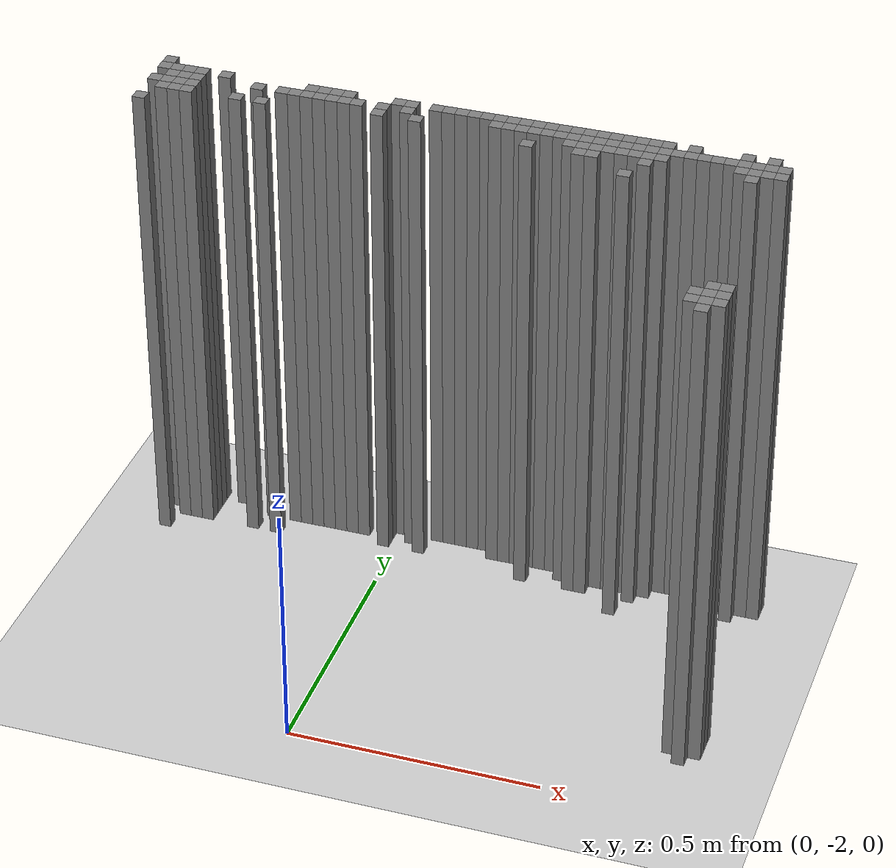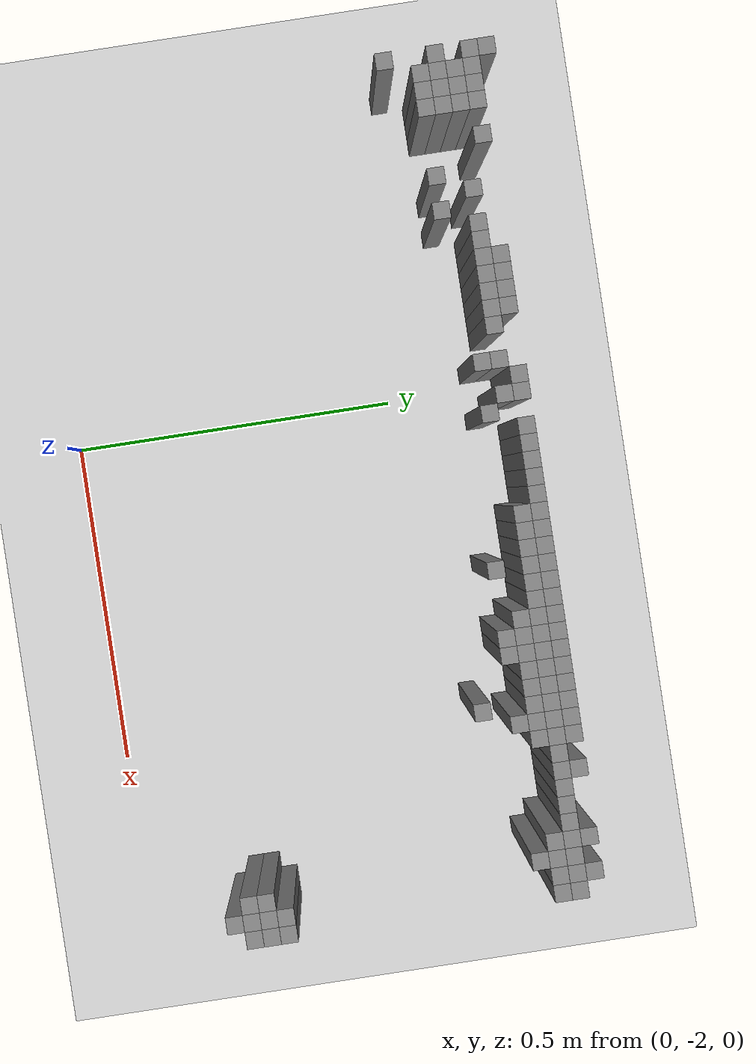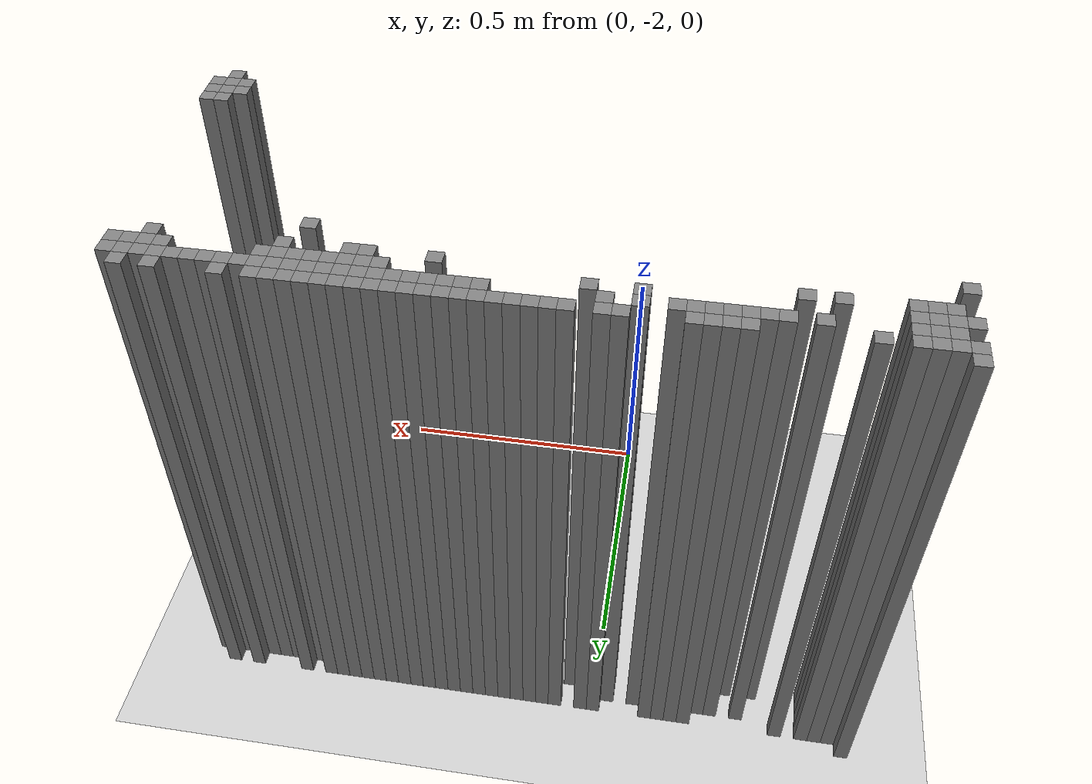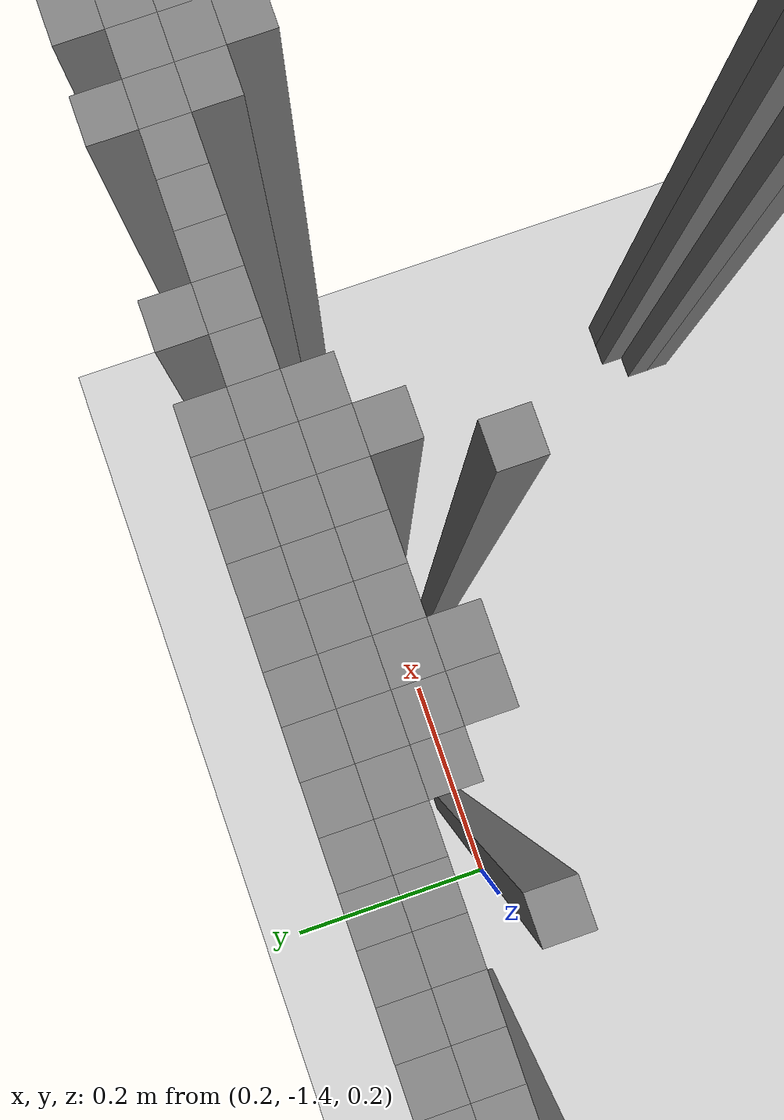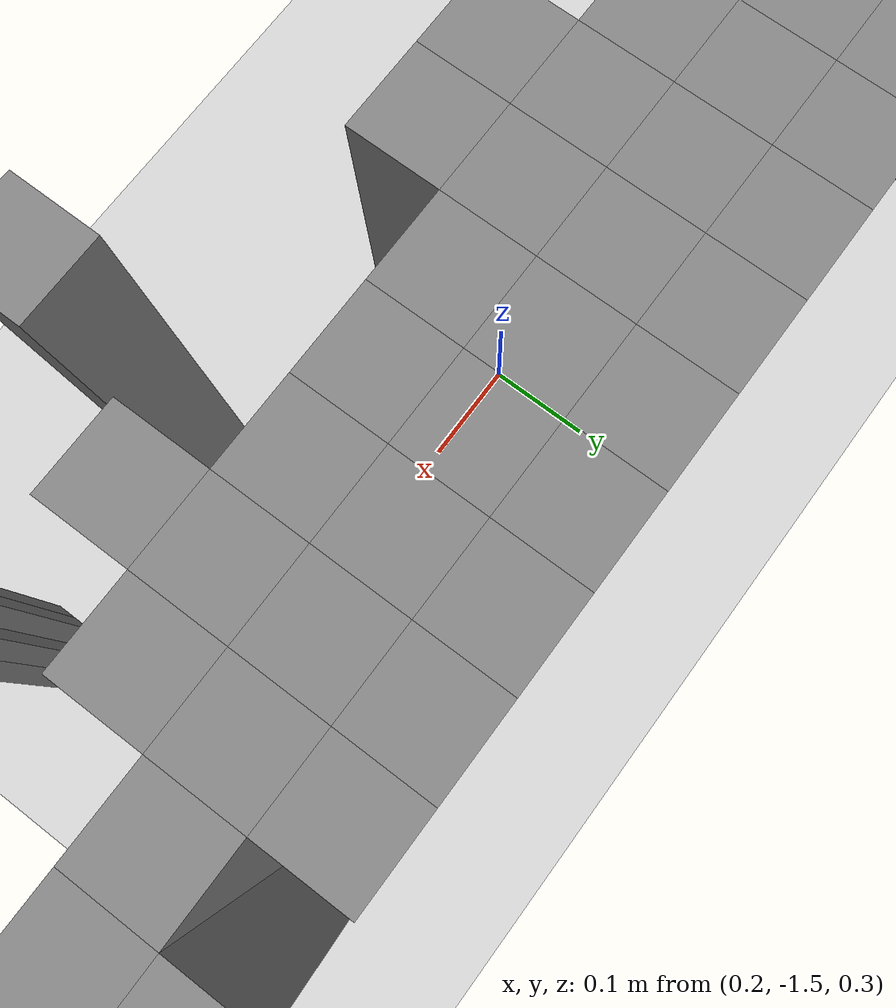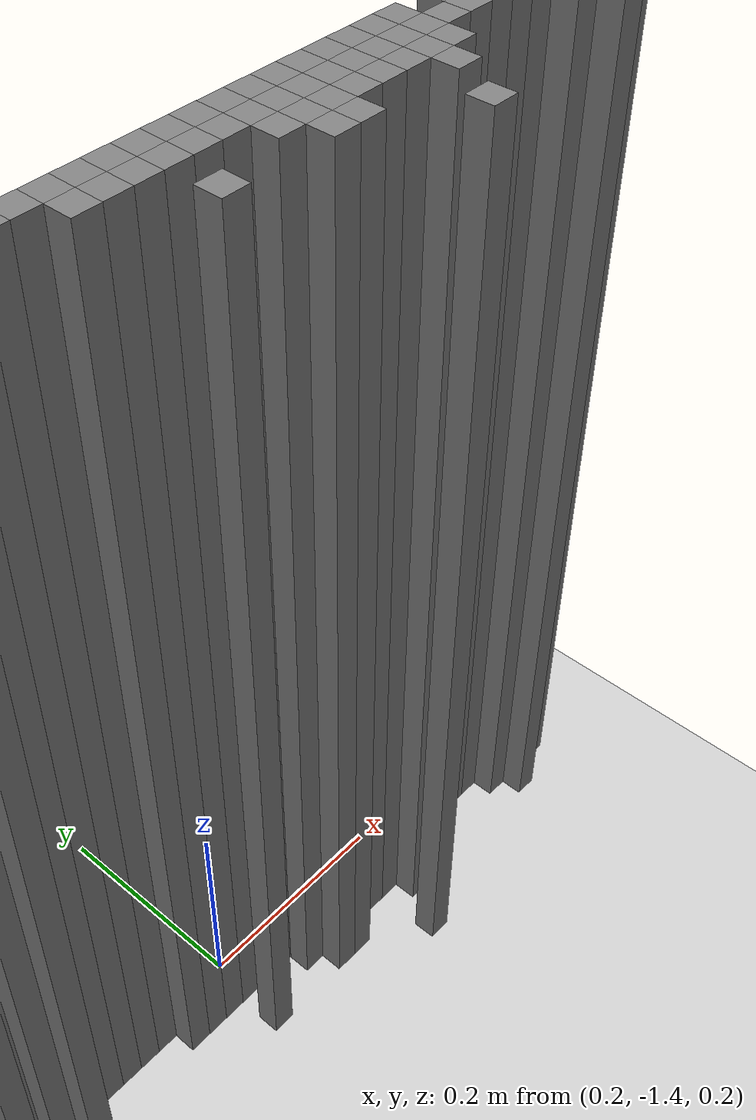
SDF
<sdf version="1.6">
 <world name="map_world">
  <include><uri>model://ground_plane</uri></include>
  <include><uri>model://sun</uri></include>
  <model name="obs_74_101">
   <static>true</static>
   <link name="link">
    <collision name="collision"><geometry><box><size>0.025 0.025 1.0</size></box></geometry></collision>
    <visual name="visual">
     <geometry><box><size>0.025 0.025 1.0</size></box></geometry>
     <material><ambient>0.5 0.5 0.5 1</ambient></material>
    </visual>
   </link>
   <pose>-0.47623499999999996 -1.2940709999999997 0.5 0 0 0</pose>
  </model>
  <model name="obs_74_102">
   <static>true</static>
   <link name="link">
    <collision name="collision"><geometry><box><size>0.025 0.025 1.0</size></box></geometry></collision>
    <visual name="visual">
     <geometry><box><size>0.025 0.025 1.0</size></box></geometry>
     <material><ambient>0.5 0.5 0.5 1</ambient></material>
    </visual>
   </link>
   <pose>-0.47623499999999996 -1.3190709999999999 0.5 0 0 0</pose>
  </model>
  <model name="obs_75_102">
   <static>true</static>
   <link name="link">
    <collision name="collision"><geometry><box><size>0.025 0.025 1.0</size></box></geometry></collision>
    <visual name="visual">
     <geometry><box><size>0.025 0.025 1.0</size></box></geometry>
     <material><ambient>0.5 0.5 0.5 1</ambient></material>
    </visual>
   </link>
   <pose>-0.45123500000000005 -1.3190709999999999 0.5 0 0 0</pose>
  </model>
  <model name="obs_76_102">
   <static>true</static>
   <link name="link">
    <collision name="collision"><geometry><box><size>0.025 0.025 1.0</size></box></geometry></collision>
    <visual name="visual">
     <geometry><box><size>0.025 0.025 1.0</size></box></geometry>
     <material><ambient>0.5 0.5 0.5 1</ambient></material>
    </visual>
   </link>
   <pose>-0.4262349999999999 -1.3190709999999999 0.5 0 0 0</pose>
  </model>
  <model name="obs_77_102">
   <static>true</static>
   <link name="link">
    <collision name="collision"><geometry><box><size>0.025 0.025 1.0</size></box></geometry></collision>
    <visual name="visual">
     <geometry><box><size>0.025 0.025 1.0</size></box></geometry>
     <material><ambient>0.5 0.5 0.5 1</ambient></material>
    </visual>
   </link>
   <pose>-0.401235 -1.3190709999999999 0.5 0 0 0</pose>
  </model>
  <model name="obs_79_102">
   <static>true</static>
   <link name="link">
    <collision name="collision"><geometry><box><size>0.025 0.025 1.0</size></box></geometry></collision>
    <visual name="visual">
     <geometry><box><size>0.025 0.025 1.0</size></box></geometry>
     <material><ambient>0.5 0.5 0.5 1</ambient></material>
    </visual>
   </link>
   <pose>-0.35123499999999996 -1.3190709999999999 0.5 0 0 0</pose>
  </model>
  <model name="obs_86_102">
   <static>true</static>
   <link name="link">
    <collision name="collision"><geometry><box><size>0.025 0.025 1.0</size></box></geometry></collision>
    <visual name="visual">
     <geometry><box><size>0.025 0.025 1.0</size></box></geometry>
     <material><ambient>0.5 0.5 0.5 1</ambient></material>
    </visual>
   </link>
   <pose>-0.17623500000000014 -1.3190709999999999 0.5 0 0 0</pose>
  </model>
  <model name="obs_87_102">
   <static>true</static>
   <link name="link">
    <collision name="collision"><geometry><box><size>0.025 0.025 1.0</size></box></geometry></collision>
    <visual name="visual">
     <geometry><box><size>0.025 0.025 1.0</size></box></geometry>
     <material><ambient>0.5 0.5 0.5 1</ambient></material>
    </visual>
   </link>
   <pose>-0.1512349999999998 -1.3190709999999999 0.5 0 0 0</pose>
  </model>
  <model name="obs_88_102">
   <static>true</static>
   <link name="link">
    <collision name="collision"><geometry><box><size>0.025 0.025 1.0</size></box></geometry></collision>
    <visual name="visual">
     <geometry><box><size>0.025 0.025 1.0</size></box></geometry>
     <material><ambient>0.5 0.5 0.5 1</ambient></material>
    </visual>
   </link>
   <pose>-0.12623499999999988 -1.3190709999999999 0.5 0 0 0</pose>
  </model>
  <model name="obs_89_102">
   <static>true</static>
   <link name="link">
    <collision name="collision"><geometry><box><size>0.025 0.025 1.0</size></box></geometry></collision>
    <visual name="visual">
     <geometry><box><size>0.025 0.025 1.0</size></box></geometry>
     <material><ambient>0.5 0.5 0.5 1</ambient></material>
    </visual>
   </link>
   <pose>-0.10123499999999996 -1.3190709999999999 0.5 0 0 0</pose>
  </model>
  <model name="obs_93_102">
   <static>true</static>
   <link name="link">
    <collision name="collision"><geometry><box><size>0.025 0.025 1.0</size></box></geometry></collision>
    <visual name="visual">
     <geometry><box><size>0.025 0.025 1.0</size></box></geometry>
     <material><ambient>0.5 0.5 0.5 1</ambient></material>
    </visual>
   </link>
   <pose>-0.001234999999999875 -1.3190709999999999 0.5 0 0 0</pose>
  </model>
  <model name="obs_94_102">
   <static>true</static>
   <link name="link">
    <collision name="collision"><geometry><box><size>0.025 0.025 1.0</size></box></geometry></collision>
    <visual name="visual">
     <geometry><box><size>0.025 0.025 1.0</size></box></geometry>
     <material><ambient>0.5 0.5 0.5 1</ambient></material>
    </visual>
   </link>
   <pose>0.023765000000000036 -1.3190709999999999 0.5 0 0 0</pose>
  </model>
  <model name="obs_96_102">
   <static>true</static>
   <link name="link">
    <collision name="collision"><geometry><box><size>0.025 0.025 1.0</size></box></geometry></collision>
    <visual name="visual">
     <geometry><box><size>0.025 0.025 1.0</size></box></geometry>
     <material><ambient>0.5 0.5 0.5 1</ambient></material>
    </visual>
   </link>
   <pose>0.0737650000000003 -1.3190709999999999 0.5 0 0 0</pose>
  </model>
  <model name="obs_97_102">
   <static>true</static>
   <link name="link">
    <collision name="collision"><geometry><box><size>0.025 0.025 1.0</size></box></geometry></collision>
    <visual name="visual">
     <geometry><box><size>0.025 0.025 1.0</size></box></geometry>
     <material><ambient>0.5 0.5 0.5 1</ambient></material>
    </visual>
   </link>
   <pose>0.09876500000000021 -1.3190709999999999 0.5 0 0 0</pose>
  </model>
  <model name="obs_98_102">
   <static>true</static>
   <link name="link">
    <collision name="collision"><geometry><box><size>0.025 0.025 1.0</size></box></geometry></collision>
    <visual name="visual">
     <geometry><box><size>0.025 0.025 1.0</size></box></geometry>
     <material><ambient>0.5 0.5 0.5 1</ambient></material>
    </visual>
   </link>
   <pose>0.12376500000000012 -1.3190709999999999 0.5 0 0 0</pose>
  </model>
  <model name="obs_99_102">
   <static>true</static>
   <link name="link">
    <collision name="collision"><geometry><box><size>0.025 0.025 1.0</size></box></geometry></collision>
    <visual name="visual">
     <geometry><box><size>0.025 0.025 1.0</size></box></geometry>
     <material><ambient>0.5 0.5 0.5 1</ambient></material>
    </visual>
   </link>
   <pose>0.14876500000000004 -1.3190709999999999 0.5 0 0 0</pose>
  </model>
  <model name="obs_100_102">
   <static>true</static>
   <link name="link">
    <collision name="collision"><geometry><box><size>0.025 0.025 1.0</size></box></geometry></collision>
    <visual name="visual">
     <geometry><box><size>0.025 0.025 1.0</size></box></geometry>
     <material><ambient>0.5 0.5 0.5 1</ambient></material>
    </visual>
   </link>
   <pose>0.17376499999999995 -1.3190709999999999 0.5 0 0 0</pose>
  </model>
  <model name="obs_101_102">
   <static>true</static>
   <link name="link">
    <collision name="collision"><geometry><box><size>0.025 0.025 1.0</size></box></geometry></collision>
    <visual name="visual">
     <geometry><box><size>0.025 0.025 1.0</size></box></geometry>
     <material><ambient>0.5 0.5 0.5 1</ambient></material>
    </visual>
   </link>
   <pose>0.1987650000000003 -1.3190709999999999 0.5 0 0 0</pose>
  </model>
  <model name="obs_102_102">
   <static>true</static>
   <link name="link">
    <collision name="collision"><geometry><box><size>0.025 0.025 1.0</size></box></geometry></collision>
    <visual name="visual">
     <geometry><box><size>0.025 0.025 1.0</size></box></geometry>
     <material><ambient>0.5 0.5 0.5 1</ambient></material>
    </visual>
   </link>
   <pose>0.2237650000000002 -1.3190709999999999 0.5 0 0 0</pose>
  </model>
  <model name="obs_103_102">
   <static>true</static>
   <link name="link">
    <collision name="collision"><geometry><box><size>0.025 0.025 1.0</size></box></geometry></collision>
    <visual name="visual">
     <geometry><box><size>0.025 0.025 1.0</size></box></geometry>
     <material><ambient>0.5 0.5 0.5 1</ambient></material>
    </visual>
   </link>
   <pose>0.24876500000000012 -1.3190709999999999 0.5 0 0 0</pose>
  </model>
  <model name="obs_104_102">
   <static>true</static>
   <link name="link">
    <collision name="collision"><geometry><box><size>0.025 0.025 1.0</size></box></geometry></collision>
    <visual name="visual">
     <geometry><box><size>0.025 0.025 1.0</size></box></geometry>
     <material><ambient>0.5 0.5 0.5 1</ambient></material>
    </visual>
   </link>
   <pose>0.27376500000000004 -1.3190709999999999 0.5 0 0 0</pose>
  </model>
  <model name="obs_105_102">
   <static>true</static>
   <link name="link">
    <collision name="collision"><geometry><box><size>0.025 0.025 1.0</size></box></geometry></collision>
    <visual name="visual">
     <geometry><box><size>0.025 0.025 1.0</size></box></geometry>
     <material><ambient>0.5 0.5 0.5 1</ambient></material>
    </visual>
   </link>
   <pose>0.29876499999999995 -1.3190709999999999 0.5 0 0 0</pose>
  </model>
  <model name="obs_106_102">
   <static>true</static>
   <link name="link">
    <collision name="collision"><geometry><box><size>0.025 0.025 1.0</size></box></geometry></collision>
    <visual name="visual">
     <geometry><box><size>0.025 0.025 1.0</size></box></geometry>
     <material><ambient>0.5 0.5 0.5 1</ambient></material>
    </visual>
   </link>
   <pose>0.3237650000000003 -1.3190709999999999 0.5 0 0 0</pose>
  </model>
  <model name="obs_107_102">
   <static>true</static>
   <link name="link">
    <collision name="collision"><geometry><box><size>0.025 0.025 1.0</size></box></geometry></collision>
    <visual name="visual">
     <geometry><box><size>0.025 0.025 1.0</size></box></geometry>
     <material><ambient>0.5 0.5 0.5 1</ambient></material>
    </visual>
   </link>
   <pose>0.3487650000000002 -1.3190709999999999 0.5 0 0 0</pose>
  </model>
  <model name="obs_108_102">
   <static>true</static>
   <link name="link">
    <collision name="collision"><geometry><box><size>0.025 0.025 1.0</size></box></geometry></collision>
    <visual name="visual">
     <geometry><box><size>0.025 0.025 1.0</size></box></geometry>
     <material><ambient>0.5 0.5 0.5 1</ambient></material>
    </visual>
   </link>
   <pose>0.3737650000000001 -1.3190709999999999 0.5 0 0 0</pose>
  </model>
  <model name="obs_109_102">
   <static>true</static>
   <link name="link">
    <collision name="collision"><geometry><box><size>0.025 0.025 1.0</size></box></geometry></collision>
    <visual name="visual">
     <geometry><box><size>0.025 0.025 1.0</size></box></geometry>
     <material><ambient>0.5 0.5 0.5 1</ambient></material>
    </visual>
   </link>
   <pose>0.39876500000000004 -1.3190709999999999 0.5 0 0 0</pose>
  </model>
  <model name="obs_110_102">
   <static>true</static>
   <link name="link">
    <collision name="collision"><geometry><box><size>0.025 0.025 1.0</size></box></geometry></collision>
    <visual name="visual">
     <geometry><box><size>0.025 0.025 1.0</size></box></geometry>
     <material><ambient>0.5 0.5 0.5 1</ambient></material>
    </visual>
   </link>
   <pose>0.42376499999999995 -1.3190709999999999 0.5 0 0 0</pose>
  </model>
  <model name="obs_111_102">
   <static>true</static>
   <link name="link">
    <collision name="collision"><geometry><box><size>0.025 0.025 1.0</size></box></geometry></collision>
    <visual name="visual">
     <geometry><box><size>0.025 0.025 1.0</size></box></geometry>
     <material><ambient>0.5 0.5 0.5 1</ambient></material>
    </visual>
   </link>
   <pose>0.4487650000000003 -1.3190709999999999 0.5 0 0 0</pose>
  </model>
  <model name="obs_112_102">
   <static>true</static>
   <link name="link">
    <collision name="collision"><geometry><box><size>0.025 0.025 1.0</size></box></geometry></collision>
    <visual name="visual">
     <geometry><box><size>0.025 0.025 1.0</size></box></geometry>
     <material><ambient>0.5 0.5 0.5 1</ambient></material>
    </visual>
   </link>
   <pose>0.4737650000000002 -1.3190709999999999 0.5 0 0 0</pose>
  </model>
  <model name="obs_113_102">
   <static>true</static>
   <link name="link">
    <collision name="collision"><geometry><box><size>0.025 0.025 1.0</size></box></geometry></collision>
    <visual name="visual">
     <geometry><box><size>0.025 0.025 1.0</size></box></geometry>
     <material><ambient>0.5 0.5 0.5 1</ambient></material>
    </visual>
   </link>
   <pose>0.4987650000000001 -1.3190709999999999 0.5 0 0 0</pose>
  </model>
  <model name="obs_114_102">
   <static>true</static>
   <link name="link">
    <collision name="collision"><geometry><box><size>0.025 0.025 1.0</size></box></geometry></collision>
    <visual name="visual">
     <geometry><box><size>0.025 0.025 1.0</size></box></geometry>
     <material><ambient>0.5 0.5 0.5 1</ambient></material>
    </visual>
   </link>
   <pose>0.523765 -1.3190709999999999 0.5 0 0 0</pose>
  </model>
  <model name="obs_116_102">
   <static>true</static>
   <link name="link">
    <collision name="collision"><geometry><box><size>0.025 0.025 1.0</size></box></geometry></collision>
    <visual name="visual">
     <geometry><box><size>0.025 0.025 1.0</size></box></geometry>
     <material><ambient>0.5 0.5 0.5 1</ambient></material>
    </visual>
   </link>
   <pose>0.5737650000000003 -1.3190709999999999 0.5 0 0 0</pose>
  </model>
  <model name="obs_120_102">
   <static>true</static>
   <link name="link">
    <collision name="collision"><geometry><box><size>0.025 0.025 1.0</size></box></geometry></collision>
    <visual name="visual">
     <geometry><box><size>0.025 0.025 1.0</size></box></geometry>
     <material><ambient>0.5 0.5 0.5 1</ambient></material>
    </visual>
   </link>
   <pose>0.673765 -1.3190709999999999 0.5 0 0 0</pose>
  </model>
  <model name="obs_122_102">
   <static>true</static>
   <link name="link">
    <collision name="collision"><geometry><box><size>0.025 0.025 1.0</size></box></geometry></collision>
    <visual name="visual">
     <geometry><box><size>0.025 0.025 1.0</size></box></geometry>
     <material><ambient>0.5 0.5 0.5 1</ambient></material>
    </visual>
   </link>
   <pose>0.7237650000000002 -1.3190709999999999 0.5 0 0 0</pose>
  </model>
  <model name="obs_75_103">
   <static>true</static>
   <link name="link">
    <collision name="collision"><geometry><box><size>0.025 0.025 1.0</size></box></geometry></collision>
    <visual name="visual">
     <geometry><box><size>0.025 0.025 1.0</size></box></geometry>
     <material><ambient>0.5 0.5 0.5 1</ambient></material>
    </visual>
   </link>
   <pose>-0.45123500000000005 -1.344071 0.5 0 0 0</pose>
  </model>
  <model name="obs_76_103">
   <static>true</static>
   <link name="link">
    <collision name="collision"><geometry><box><size>0.025 0.025 1.0</size></box></geometry></collision>
    <visual name="visual">
     <geometry><box><size>0.025 0.025 1.0</size></box></geometry>
     <material><ambient>0.5 0.5 0.5 1</ambient></material>
    </visual>
   </link>
   <pose>-0.4262349999999999 -1.344071 0.5 0 0 0</pose>
  </model>
  <model name="obs_77_103">
   <static>true</static>
   <link name="link">
    <collision name="collision"><geometry><box><size>0.025 0.025 1.0</size></box></geometry></collision>
    <visual name="visual">
     <geometry><box><size>0.025 0.025 1.0</size></box></geometry>
     <material><ambient>0.5 0.5 0.5 1</ambient></material>
    </visual>
   </link>
   <pose>-0.401235 -1.344071 0.5 0 0 0</pose>
  </model>
  <model name="obs_82_103">
   <static>true</static>
   <link name="link">
    <collision name="collision"><geometry><box><size>0.025 0.025 1.0</size></box></geometry></collision>
    <visual name="visual">
     <geometry><box><size>0.025 0.025 1.0</size></box></geometry>
     <material><ambient>0.5 0.5 0.5 1</ambient></material>
    </visual>
   </link>
   <pose>-0.2762349999999998 -1.344071 0.5 0 0 0</pose>
  </model>
  <model name="obs_84_103">
   <static>true</static>
   <link name="link">
    <collision name="collision"><geometry><box><size>0.025 0.025 1.0</size></box></geometry></collision>
    <visual name="visual">
     <geometry><box><size>0.025 0.025 1.0</size></box></geometry>
     <material><ambient>0.5 0.5 0.5 1</ambient></material>
    </visual>
   </link>
   <pose>-0.22623499999999996 -1.344071 0.5 0 0 0</pose>
  </model>
  <model name="obs_85_103">
   <static>true</static>
   <link name="link">
    <collision name="collision"><geometry><box><size>0.025 0.025 1.0</size></box></geometry></collision>
    <visual name="visual">
     <geometry><box><size>0.025 0.025 1.0</size></box></geometry>
     <material><ambient>0.5 0.5 0.5 1</ambient></material>
    </visual>
   </link>
   <pose>-0.20123500000000005 -1.344071 0.5 0 0 0</pose>
  </model>
  <model name="obs_86_103">
   <static>true</static>
   <link name="link">
    <collision name="collision"><geometry><box><size>0.025 0.025 1.0</size></box></geometry></collision>
    <visual name="visual">
     <geometry><box><size>0.025 0.025 1.0</size></box></geometry>
     <material><ambient>0.5 0.5 0.5 1</ambient></material>
    </visual>
   </link>
   <pose>-0.17623500000000014 -1.344071 0.5 0 0 0</pose>
  </model>
  <model name="obs_87_103">
   <static>true</static>
   <link name="link">
    <collision name="collision"><geometry><box><size>0.025 0.025 1.0</size></box></geometry></collision>
    <visual name="visual">
     <geometry><box><size>0.025 0.025 1.0</size></box></geometry>
     <material><ambient>0.5 0.5 0.5 1</ambient></material>
    </visual>
   </link>
   <pose>-0.1512349999999998 -1.344071 0.5 0 0 0</pose>
  </model>
  <model name="obs_88_103">
   <static>true</static>
   <link name="link">
    <collision name="collision"><geometry><box><size>0.025 0.025 1.0</size></box></geometry></collision>
    <visual name="visual">
     <geometry><box><size>0.025 0.025 1.0</size></box></geometry>
     <material><ambient>0.5 0.5 0.5 1</ambient></material>
    </visual>
   </link>
   <pose>-0.12623499999999988 -1.344071 0.5 0 0 0</pose>
  </model>
  <model name="obs_89_103">
   <static>true</static>
   <link name="link">
    <collision name="collision"><geometry><box><size>0.025 0.025 1.0</size></box></geometry></collision>
    <visual name="visual">
     <geometry><box><size>0.025 0.025 1.0</size></box></geometry>
     <material><ambient>0.5 0.5 0.5 1</ambient></material>
    </visual>
   </link>
   <pose>-0.10123499999999996 -1.344071 0.5 0 0 0</pose>
  </model>
  <model name="obs_90_103">
   <static>true</static>
   <link name="link">
    <collision name="collision"><geometry><box><size>0.025 0.025 1.0</size></box></geometry></collision>
    <visual name="visual">
     <geometry><box><size>0.025 0.025 1.0</size></box></geometry>
     <material><ambient>0.5 0.5 0.5 1</ambient></material>
    </visual>
   </link>
   <pose>-0.07623500000000005 -1.344071 0.5 0 0 0</pose>
  </model>
  <model name="obs_92_103">
   <static>true</static>
   <link name="link">
    <collision name="collision"><geometry><box><size>0.025 0.025 1.0</size></box></geometry></collision>
    <visual name="visual">
     <geometry><box><size>0.025 0.025 1.0</size></box></geometry>
     <material><ambient>0.5 0.5 0.5 1</ambient></material>
    </visual>
   </link>
   <pose>-0.026234999999999786 -1.344071 0.5 0 0 0</pose>
  </model>
  <model name="obs_94_103">
   <static>true</static>
   <link name="link">
    <collision name="collision"><geometry><box><size>0.025 0.025 1.0</size></box></geometry></collision>
    <visual name="visual">
     <geometry><box><size>0.025 0.025 1.0</size></box></geometry>
     <material><ambient>0.5 0.5 0.5 1</ambient></material>
    </visual>
   </link>
   <pose>0.023765000000000036 -1.344071 0.5 0 0 0</pose>
  </model>
  <model name="obs_101_103">
   <static>true</static>
   <link name="link">
    <collision name="collision"><geometry><box><size>0.025 0.025 1.0</size></box></geometry></collision>
    <visual name="visual">
     <geometry><box><size>0.025 0.025 1.0</size></box></geometry>
     <material><ambient>0.5 0.5 0.5 1</ambient></material>
    </visual>
   </link>
   <pose>0.1987650000000003 -1.344071 0.5 0 0 0</pose>
  </model>
  <model name="obs_102_103">
   <static>true</static>
   <link name="link">
    <collision name="collision"><geometry><box><size>0.025 0.025 1.0</size></box></geometry></collision>
    <visual name="visual">
     <geometry><box><size>0.025 0.025 1.0</size></box></geometry>
     <material><ambient>0.5 0.5 0.5 1</ambient></material>
    </visual>
   </link>
   <pose>0.2237650000000002 -1.344071 0.5 0 0 0</pose>
  </model>
  <model name="obs_103_103">
   <static>true</static>
   <link name="link">
    <collision name="collision"><geometry><box><size>0.025 0.025 1.0</size></box></geometry></collision>
    <visual name="visual">
     <geometry><box><size>0.025 0.025 1.0</size></box></geometry>
     <material><ambient>0.5 0.5 0.5 1</ambient></material>
    </visual>
   </link>
   <pose>0.24876500000000012 -1.344071 0.5 0 0 0</pose>
  </model>
  <model name="obs_104_103">
   <static>true</static>
   <link name="link">
    <collision name="collision"><geometry><box><size>0.025 0.025 1.0</size></box></geometry></collision>
    <visual name="visual">
     <geometry><box><size>0.025 0.025 1.0</size></box></geometry>
     <material><ambient>0.5 0.5 0.5 1</ambient></material>
    </visual>
   </link>
   <pose>0.27376500000000004 -1.344071 0.5 0 0 0</pose>
  </model>
  <model name="obs_105_103">
   <static>true</static>
   <link name="link">
    <collision name="collision"><geometry><box><size>0.025 0.025 1.0</size></box></geometry></collision>
    <visual name="visual">
     <geometry><box><size>0.025 0.025 1.0</size></box></geometry>
     <material><ambient>0.5 0.5 0.5 1</ambient></material>
    </visual>
   </link>
   <pose>0.29876499999999995 -1.344071 0.5 0 0 0</pose>
  </model>
  <model name="obs_106_103">
   <static>true</static>
   <link name="link">
    <collision name="collision"><geometry><box><size>0.025 0.025 1.0</size></box></geometry></collision>
    <visual name="visual">
     <geometry><box><size>0.025 0.025 1.0</size></box></geometry>
     <material><ambient>0.5 0.5 0.5 1</ambient></material>
    </visual>
   </link>
   <pose>0.3237650000000003 -1.344071 0.5 0 0 0</pose>
  </model>
  <model name="obs_107_103">
   <static>true</static>
   <link name="link">
    <collision name="collision"><geometry><box><size>0.025 0.025 1.0</size></box></geometry></collision>
    <visual name="visual">
     <geometry><box><size>0.025 0.025 1.0</size></box></geometry>
     <material><ambient>0.5 0.5 0.5 1</ambient></material>
    </visual>
   </link>
   <pose>0.3487650000000002 -1.344071 0.5 0 0 0</pose>
  </model>
  <model name="obs_108_103">
   <static>true</static>
   <link name="link">
    <collision name="collision"><geometry><box><size>0.025 0.025 1.0</size></box></geometry></collision>
    <visual name="visual">
     <geometry><box><size>0.025 0.025 1.0</size></box></geometry>
     <material><ambient>0.5 0.5 0.5 1</ambient></material>
    </visual>
   </link>
   <pose>0.3737650000000001 -1.344071 0.5 0 0 0</pose>
  </model>
  <model name="obs_109_103">
   <static>true</static>
   <link name="link">
    <collision name="collision"><geometry><box><size>0.025 0.025 1.0</size></box></geometry></collision>
    <visual name="visual">
     <geometry><box><size>0.025 0.025 1.0</size></box></geometry>
     <material><ambient>0.5 0.5 0.5 1</ambient></material>
    </visual>
   </link>
   <pose>0.39876500000000004 -1.344071 0.5 0 0 0</pose>
  </model>
  <model name="obs_110_103">
   <static>true</static>
   <link name="link">
    <collision name="collision"><geometry><box><size>0.025 0.025 1.0</size></box></geometry></collision>
    <visual name="visual">
     <geometry><box><size>0.025 0.025 1.0</size></box></geometry>
     <material><ambient>0.5 0.5 0.5 1</ambient></material>
    </visual>
   </link>
   <pose>0.42376499999999995 -1.344071 0.5 0 0 0</pose>
  </model>
  <model name="obs_111_103">
   <static>true</static>
   <link name="link">
    <collision name="collision"><geometry><box><size>0.025 0.025 1.0</size></box></geometry></collision>
    <visual name="visual">
     <geometry><box><size>0.025 0.025 1.0</size></box></geometry>
     <material><ambient>0.5 0.5 0.5 1</ambient></material>
    </visual>
   </link>
   <pose>0.4487650000000003 -1.344071 0.5 0 0 0</pose>
  </model>
  <model name="obs_112_103">
   <static>true</static>
   <link name="link">
    <collision name="collision"><geometry><box><size>0.025 0.025 1.0</size></box></geometry></collision>
    <visual name="visual">
     <geometry><box><size>0.025 0.025 1.0</size></box></geometry>
     <material><ambient>0.5 0.5 0.5 1</ambient></material>
    </visual>
   </link>
   <pose>0.4737650000000002 -1.344071 0.5 0 0 0</pose>
  </model>
  <model name="obs_113_103">
   <static>true</static>
   <link name="link">
    <collision name="collision"><geometry><box><size>0.025 0.025 1.0</size></box></geometry></collision>
    <visual name="visual">
     <geometry><box><size>0.025 0.025 1.0</size></box></geometry>
     <material><ambient>0.5 0.5 0.5 1</ambient></material>
    </visual>
   </link>
   <pose>0.4987650000000001 -1.344071 0.5 0 0 0</pose>
  </model>
  <model name="obs_114_103">
   <static>true</static>
   <link name="link">
    <collision name="collision"><geometry><box><size>0.025 0.025 1.0</size></box></geometry></collision>
    <visual name="visual">
     <geometry><box><size>0.025 0.025 1.0</size></box></geometry>
     <material><ambient>0.5 0.5 0.5 1</ambient></material>
    </visual>
   </link>
   <pose>0.523765 -1.344071 0.5 0 0 0</pose>
  </model>
  <model name="obs_115_103">
   <static>true</static>
   <link name="link">
    <collision name="collision"><geometry><box><size>0.025 0.025 1.0</size></box></geometry></collision>
    <visual name="visual">
     <geometry><box><size>0.025 0.025 1.0</size></box></geometry>
     <material><ambient>0.5 0.5 0.5 1</ambient></material>
    </visual>
   </link>
   <pose>0.548765 -1.344071 0.5 0 0 0</pose>
  </model>
  <model name="obs_116_103">
   <static>true</static>
   <link name="link">
    <collision name="collision"><geometry><box><size>0.025 0.025 1.0</size></box></geometry></collision>
    <visual name="visual">
     <geometry><box><size>0.025 0.025 1.0</size></box></geometry>
     <material><ambient>0.5 0.5 0.5 1</ambient></material>
    </visual>
   </link>
   <pose>0.5737650000000003 -1.344071 0.5 0 0 0</pose>
  </model>
  <model name="obs_117_103">
   <static>true</static>
   <link name="link">
    <collision name="collision"><geometry><box><size>0.025 0.025 1.0</size></box></geometry></collision>
    <visual name="visual">
     <geometry><box><size>0.025 0.025 1.0</size></box></geometry>
     <material><ambient>0.5 0.5 0.5 1</ambient></material>
    </visual>
   </link>
   <pose>0.5987650000000002 -1.344071 0.5 0 0 0</pose>
  </model>
  <model name="obs_118_103">
   <static>true</static>
   <link name="link">
    <collision name="collision"><geometry><box><size>0.025 0.025 1.0</size></box></geometry></collision>
    <visual name="visual">
     <geometry><box><size>0.025 0.025 1.0</size></box></geometry>
     <material><ambient>0.5 0.5 0.5 1</ambient></material>
    </visual>
   </link>
   <pose>0.6237650000000001 -1.344071 0.5 0 0 0</pose>
  </model>
  <model name="obs_119_103">
   <static>true</static>
   <link name="link">
    <collision name="collision"><geometry><box><size>0.025 0.025 1.0</size></box></geometry></collision>
    <visual name="visual">
     <geometry><box><size>0.025 0.025 1.0</size></box></geometry>
     <material><ambient>0.5 0.5 0.5 1</ambient></material>
    </visual>
   </link>
   <pose>0.648765 -1.344071 0.5 0 0 0</pose>
  </model>
  <model name="obs_120_103">
   <static>true</static>
   <link name="link">
    <collision name="collision"><geometry><box><size>0.025 0.025 1.0</size></box></geometry></collision>
    <visual name="visual">
     <geometry><box><size>0.025 0.025 1.0</size></box></geometry>
     <material><ambient>0.5 0.5 0.5 1</ambient></material>
    </visual>
   </link>
   <pose>0.673765 -1.344071 0.5 0 0 0</pose>
  </model>
  <model name="obs_121_103">
   <static>true</static>
   <link name="link">
    <collision name="collision"><geometry><box><size>0.025 0.025 1.0</size></box></geometry></collision>
    <visual name="visual">
     <geometry><box><size>0.025 0.025 1.0</size></box></geometry>
     <material><ambient>0.5 0.5 0.5 1</ambient></material>
    </visual>
   </link>
   <pose>0.6987650000000003 -1.344071 0.5 0 0 0</pose>
  </model>
  <model name="obs_122_103">
   <static>true</static>
   <link name="link">
    <collision name="collision"><geometry><box><size>0.025 0.025 1.0</size></box></geometry></collision>
    <visual name="visual">
     <geometry><box><size>0.025 0.025 1.0</size></box></geometry>
     <material><ambient>0.5 0.5 0.5 1</ambient></material>
    </visual>
   </link>
   <pose>0.7237650000000002 -1.344071 0.5 0 0 0</pose>
  </model>
  <model name="obs_123_103">
   <static>true</static>
   <link name="link">
    <collision name="collision"><geometry><box><size>0.025 0.025 1.0</size></box></geometry></collision>
    <visual name="visual">
     <geometry><box><size>0.025 0.025 1.0</size></box></geometry>
     <material><ambient>0.5 0.5 0.5 1</ambient></material>
    </visual>
   </link>
   <pose>0.7487650000000001 -1.344071 0.5 0 0 0</pose>
  </model>
  <model name="obs_74_104">
   <static>true</static>
   <link name="link">
    <collision name="collision"><geometry><box><size>0.025 0.025 1.0</size></box></geometry></collision>
    <visual name="visual">
     <geometry><box><size>0.025 0.025 1.0</size></box></geometry>
     <material><ambient>0.5 0.5 0.5 1</ambient></material>
    </visual>
   </link>
   <pose>-0.47623499999999996 -1.369071 0.5 0 0 0</pose>
  </model>
  <model name="obs_75_104">
   <static>true</static>
   <link name="link">
    <collision name="collision"><geometry><box><size>0.025 0.025 1.0</size></box></geometry></collision>
    <visual name="visual">
     <geometry><box><size>0.025 0.025 1.0</size></box></geometry>
     <material><ambient>0.5 0.5 0.5 1</ambient></material>
    </visual>
   </link>
   <pose>-0.45123500000000005 -1.369071 0.5 0 0 0</pose>
  </model>
  <model name="obs_76_104">
   <static>true</static>
   <link name="link">
    <collision name="collision"><geometry><box><size>0.025 0.025 1.0</size></box></geometry></collision>
    <visual name="visual">
     <geometry><box><size>0.025 0.025 1.0</size></box></geometry>
     <material><ambient>0.5 0.5 0.5 1</ambient></material>
    </visual>
   </link>
   <pose>-0.4262349999999999 -1.369071 0.5 0 0 0</pose>
  </model>
  <model name="obs_77_104">
   <static>true</static>
   <link name="link">
    <collision name="collision"><geometry><box><size>0.025 0.025 1.0</size></box></geometry></collision>
    <visual name="visual">
     <geometry><box><size>0.025 0.025 1.0</size></box></geometry>
     <material><ambient>0.5 0.5 0.5 1</ambient></material>
    </visual>
   </link>
   <pose>-0.401235 -1.369071 0.5 0 0 0</pose>
  </model>
  <model name="obs_92_104">
   <static>true</static>
   <link name="link">
    <collision name="collision"><geometry><box><size>0.025 0.025 1.0</size></box></geometry></collision>
    <visual name="visual">
     <geometry><box><size>0.025 0.025 1.0</size></box></geometry>
     <material><ambient>0.5 0.5 0.5 1</ambient></material>
    </visual>
   </link>
   <pose>-0.026234999999999786 -1.369071 0.5 0 0 0</pose>
  </model>
  <model name="obs_95_104">
   <static>true</static>
   <link name="link">
    <collision name="collision"><geometry><box><size>0.025 0.025 1.0</size></box></geometry></collision>
    <visual name="visual">
     <geometry><box><size>0.025 0.025 1.0</size></box></geometry>
     <material><ambient>0.5 0.5 0.5 1</ambient></material>
    </visual>
   </link>
   <pose>0.04876499999999995 -1.369071 0.5 0 0 0</pose>
  </model>
  <model name="obs_107_104">
   <static>true</static>
   <link name="link">
    <collision name="collision"><geometry><box><size>0.025 0.025 1.0</size></box></geometry></collision>
    <visual name="visual">
     <geometry><box><size>0.025 0.025 1.0</size></box></geometry>
     <material><ambient>0.5 0.5 0.5 1</ambient></material>
    </visual>
   </link>
   <pose>0.3487650000000002 -1.369071 0.5 0 0 0</pose>
  </model>
  <model name="obs_108_104">
   <static>true</static>
   <link name="link">
    <collision name="collision"><geometry><box><size>0.025 0.025 1.0</size></box></geometry></collision>
    <visual name="visual">
     <geometry><box><size>0.025 0.025 1.0</size></box></geometry>
     <material><ambient>0.5 0.5 0.5 1</ambient></material>
    </visual>
   </link>
   <pose>0.3737650000000001 -1.369071 0.5 0 0 0</pose>
  </model>
  <model name="obs_109_104">
   <static>true</static>
   <link name="link">
    <collision name="collision"><geometry><box><size>0.025 0.025 1.0</size></box></geometry></collision>
    <visual name="visual">
     <geometry><box><size>0.025 0.025 1.0</size></box></geometry>
     <material><ambient>0.5 0.5 0.5 1</ambient></material>
    </visual>
   </link>
   <pose>0.39876500000000004 -1.369071 0.5 0 0 0</pose>
  </model>
  <model name="obs_110_104">
   <static>true</static>
   <link name="link">
    <collision name="collision"><geometry><box><size>0.025 0.025 1.0</size></box></geometry></collision>
    <visual name="visual">
     <geometry><box><size>0.025 0.025 1.0</size></box></geometry>
     <material><ambient>0.5 0.5 0.5 1</ambient></material>
    </visual>
   </link>
   <pose>0.42376499999999995 -1.369071 0.5 0 0 0</pose>
  </model>
  <model name="obs_111_104">
   <static>true</static>
   <link name="link">
    <collision name="collision"><geometry><box><size>0.025 0.025 1.0</size></box></geometry></collision>
    <visual name="visual">
     <geometry><box><size>0.025 0.025 1.0</size></box></geometry>
     <material><ambient>0.5 0.5 0.5 1</ambient></material>
    </visual>
   </link>
   <pose>0.4487650000000003 -1.369071 0.5 0 0 0</pose>
  </model>
  <model name="obs_112_104">
   <static>true</static>
   <link name="link">
    <collision name="collision"><geometry><box><size>0.025 0.025 1.0</size></box></geometry></collision>
    <visual name="visual">
     <geometry><box><size>0.025 0.025 1.0</size></box></geometry>
     <material><ambient>0.5 0.5 0.5 1</ambient></material>
    </visual>
   </link>
   <pose>0.4737650000000002 -1.369071 0.5 0 0 0</pose>
  </model>
  <model name="obs_113_104">
   <static>true</static>
   <link name="link">
    <collision name="collision"><geometry><box><size>0.025 0.025 1.0</size></box></geometry></collision>
    <visual name="visual">
     <geometry><box><size>0.025 0.025 1.0</size></box></geometry>
     <material><ambient>0.5 0.5 0.5 1</ambient></material>
    </visual>
   </link>
   <pose>0.4987650000000001 -1.369071 0.5 0 0 0</pose>
  </model>
  <model name="obs_114_104">
   <static>true</static>
   <link name="link">
    <collision name="collision"><geometry><box><size>0.025 0.025 1.0</size></box></geometry></collision>
    <visual name="visual">
     <geometry><box><size>0.025 0.025 1.0</size></box></geometry>
     <material><ambient>0.5 0.5 0.5 1</ambient></material>
    </visual>
   </link>
   <pose>0.523765 -1.369071 0.5 0 0 0</pose>
  </model>
  <model name="obs_120_104">
   <static>true</static>
   <link name="link">
    <collision name="collision"><geometry><box><size>0.025 0.025 1.0</size></box></geometry></collision>
    <visual name="visual">
     <geometry><box><size>0.025 0.025 1.0</size></box></geometry>
     <material><ambient>0.5 0.5 0.5 1</ambient></material>
    </visual>
   </link>
   <pose>0.673765 -1.369071 0.5 0 0 0</pose>
  </model>
  <model name="obs_121_104">
   <static>true</static>
   <link name="link">
    <collision name="collision"><geometry><box><size>0.025 0.025 1.0</size></box></geometry></collision>
    <visual name="visual">
     <geometry><box><size>0.025 0.025 1.0</size></box></geometry>
     <material><ambient>0.5 0.5 0.5 1</ambient></material>
    </visual>
   </link>
   <pose>0.6987650000000003 -1.369071 0.5 0 0 0</pose>
  </model>
  <model name="obs_122_104">
   <static>true</static>
   <link name="link">
    <collision name="collision"><geometry><box><size>0.025 0.025 1.0</size></box></geometry></collision>
    <visual name="visual">
     <geometry><box><size>0.025 0.025 1.0</size></box></geometry>
     <material><ambient>0.5 0.5 0.5 1</ambient></material>
    </visual>
   </link>
   <pose>0.7237650000000002 -1.369071 0.5 0 0 0</pose>
  </model>
  <model name="obs_123_104">
   <static>true</static>
   <link name="link">
    <collision name="collision"><geometry><box><size>0.025 0.025 1.0</size></box></geometry></collision>
    <visual name="visual">
     <geometry><box><size>0.025 0.025 1.0</size></box></geometry>
     <material><ambient>0.5 0.5 0.5 1</ambient></material>
    </visual>
   </link>
   <pose>0.7487650000000001 -1.369071 0.5 0 0 0</pose>
  </model>
  <model name="obs_75_105">
   <static>true</static>
   <link name="link">
    <collision name="collision"><geometry><box><size>0.025 0.025 1.0</size></box></geometry></collision>
    <visual name="visual">
     <geometry><box><size>0.025 0.025 1.0</size></box></geometry>
     <material><ambient>0.5 0.5 0.5 1</ambient></material>
    </visual>
   </link>
   <pose>-0.45123500000000005 -1.3940709999999998 0.5 0 0 0</pose>
  </model>
  <model name="obs_76_105">
   <static>true</static>
   <link name="link">
    <collision name="collision"><geometry><box><size>0.025 0.025 1.0</size></box></geometry></collision>
    <visual name="visual">
     <geometry><box><size>0.025 0.025 1.0</size></box></geometry>
     <material><ambient>0.5 0.5 0.5 1</ambient></material>
    </visual>
   </link>
   <pose>-0.4262349999999999 -1.3940709999999998 0.5 0 0 0</pose>
  </model>
  <model name="obs_77_105">
   <static>true</static>
   <link name="link">
    <collision name="collision"><geometry><box><size>0.025 0.025 1.0</size></box></geometry></collision>
    <visual name="visual">
     <geometry><box><size>0.025 0.025 1.0</size></box></geometry>
     <material><ambient>0.5 0.5 0.5 1</ambient></material>
    </visual>
   </link>
   <pose>-0.401235 -1.3940709999999998 0.5 0 0 0</pose>
  </model>
  <model name="obs_81_105">
   <static>true</static>
   <link name="link">
    <collision name="collision"><geometry><box><size>0.025 0.025 1.0</size></box></geometry></collision>
    <visual name="visual">
     <geometry><box><size>0.025 0.025 1.0</size></box></geometry>
     <material><ambient>0.5 0.5 0.5 1</ambient></material>
    </visual>
   </link>
   <pose>-0.30123500000000014 -1.3940709999999998 0.5 0 0 0</pose>
  </model>
  <model name="obs_83_105">
   <static>true</static>
   <link name="link">
    <collision name="collision"><geometry><box><size>0.025 0.025 1.0</size></box></geometry></collision>
    <visual name="visual">
     <geometry><box><size>0.025 0.025 1.0</size></box></geometry>
     <material><ambient>0.5 0.5 0.5 1</ambient></material>
    </visual>
   </link>
   <pose>-0.2512349999999999 -1.3940709999999998 0.5 0 0 0</pose>
  </model>
  <model name="obs_104_105">
   <static>true</static>
   <link name="link">
    <collision name="collision"><geometry><box><size>0.025 0.025 1.0</size></box></geometry></collision>
    <visual name="visual">
     <geometry><box><size>0.025 0.025 1.0</size></box></geometry>
     <material><ambient>0.5 0.5 0.5 1</ambient></material>
    </visual>
   </link>
   <pose>0.27376500000000004 -1.3940709999999998 0.5 0 0 0</pose>
  </model>
  <model name="obs_108_105">
   <static>true</static>
   <link name="link">
    <collision name="collision"><geometry><box><size>0.025 0.025 1.0</size></box></geometry></collision>
    <visual name="visual">
     <geometry><box><size>0.025 0.025 1.0</size></box></geometry>
     <material><ambient>0.5 0.5 0.5 1</ambient></material>
    </visual>
   </link>
   <pose>0.3737650000000001 -1.3940709999999998 0.5 0 0 0</pose>
  </model>
  <model name="obs_109_105">
   <static>true</static>
   <link name="link">
    <collision name="collision"><geometry><box><size>0.025 0.025 1.0</size></box></geometry></collision>
    <visual name="visual">
     <geometry><box><size>0.025 0.025 1.0</size></box></geometry>
     <material><ambient>0.5 0.5 0.5 1</ambient></material>
    </visual>
   </link>
   <pose>0.39876500000000004 -1.3940709999999998 0.5 0 0 0</pose>
  </model>
  <model name="obs_113_105">
   <static>true</static>
   <link name="link">
    <collision name="collision"><geometry><box><size>0.025 0.025 1.0</size></box></geometry></collision>
    <visual name="visual">
     <geometry><box><size>0.025 0.025 1.0</size></box></geometry>
     <material><ambient>0.5 0.5 0.5 1</ambient></material>
    </visual>
   </link>
   <pose>0.4987650000000001 -1.3940709999999998 0.5 0 0 0</pose>
  </model>
  <model name="obs_121_105">
   <static>true</static>
   <link name="link">
    <collision name="collision"><geometry><box><size>0.025 0.025 1.0</size></box></geometry></collision>
    <visual name="visual">
     <geometry><box><size>0.025 0.025 1.0</size></box></geometry>
     <material><ambient>0.5 0.5 0.5 1</ambient></material>
    </visual>
   </link>
   <pose>0.6987650000000003 -1.3940709999999998 0.5 0 0 0</pose>
  </model>
  <model name="obs_74_107">
   <static>true</static>
   <link name="link">
    <collision name="collision"><geometry><box><size>0.025 0.025 1.0</size></box></geometry></collision>
    <visual name="visual">
     <geometry><box><size>0.025 0.025 1.0</size></box></geometry>
     <material><ambient>0.5 0.5 0.5 1</ambient></material>
    </visual>
   </link>
   <pose>-0.47623499999999996 -1.4440709999999999 0.5 0 0 0</pose>
  </model>
  <model name="obs_112_107">
   <static>true</static>
   <link name="link">
    <collision name="collision"><geometry><box><size>0.025 0.025 1.0</size></box></geometry></collision>
    <visual name="visual">
     <geometry><box><size>0.025 0.025 1.0</size></box></geometry>
     <material><ambient>0.5 0.5 0.5 1</ambient></material>
    </visual>
   </link>
   <pose>0.4737650000000002 -1.4440709999999999 0.5 0 0 0</pose>
  </model>
  <model name="obs_122_120">
   <static>true</static>
   <link name="link">
    <collision name="collision"><geometry><box><size>0.025 0.025 1.0</size></box></geometry></collision>
    <visual name="visual">
     <geometry><box><size>0.025 0.025 1.0</size></box></geometry>
     <material><ambient>0.5 0.5 0.5 1</ambient></material>
    </visual>
   </link>
   <pose>0.7237650000000002 -1.7690709999999998 0.5 0 0 0</pose>
  </model>
  <model name="obs_123_120">
   <static>true</static>
   <link name="link">
    <collision name="collision"><geometry><box><size>0.025 0.025 1.0</size></box></geometry></collision>
    <visual name="visual">
     <geometry><box><size>0.025 0.025 1.0</size></box></geometry>
     <material><ambient>0.5 0.5 0.5 1</ambient></material>
    </visual>
   </link>
   <pose>0.7487650000000001 -1.7690709999999998 0.5 0 0 0</pose>
  </model>
  <model name="obs_121_121">
   <static>true</static>
   <link name="link">
    <collision name="collision"><geometry><box><size>0.025 0.025 1.0</size></box></geometry></collision>
    <visual name="visual">
     <geometry><box><size>0.025 0.025 1.0</size></box></geometry>
     <material><ambient>0.5 0.5 0.5 1</ambient></material>
    </visual>
   </link>
   <pose>0.6987650000000003 -1.794071 0.5 0 0 0</pose>
  </model>
  <model name="obs_122_121">
   <static>true</static>
   <link name="link">
    <collision name="collision"><geometry><box><size>0.025 0.025 1.0</size></box></geometry></collision>
    <visual name="visual">
     <geometry><box><size>0.025 0.025 1.0</size></box></geometry>
     <material><ambient>0.5 0.5 0.5 1</ambient></material>
    </visual>
   </link>
   <pose>0.7237650000000002 -1.794071 0.5 0 0 0</pose>
  </model>
  <model name="obs_123_121">
   <static>true</static>
   <link name="link">
    <collision name="collision"><geometry><box><size>0.025 0.025 1.0</size></box></geometry></collision>
    <visual name="visual">
     <geometry><box><size>0.025 0.025 1.0</size></box></geometry>
     <material><ambient>0.5 0.5 0.5 1</ambient></material>
    </visual>
   </link>
   <pose>0.7487650000000001 -1.794071 0.5 0 0 0</pose>
  </model>
  <model name="obs_121_122">
   <static>true</static>
   <link name="link">
    <collision name="collision"><geometry><box><size>0.025 0.025 1.0</size></box></geometry></collision>
    <visual name="visual">
     <geometry><box><size>0.025 0.025 1.0</size></box></geometry>
     <material><ambient>0.5 0.5 0.5 1</ambient></material>
    </visual>
   </link>
   <pose>0.6987650000000003 -1.8190709999999999 0.5 0 0 0</pose>
  </model>
  <model name="obs_122_122">
   <static>true</static>
   <link name="link">
    <collision name="collision"><geometry><box><size>0.025 0.025 1.0</size></box></geometry></collision>
    <visual name="visual">
     <geometry><box><size>0.025 0.025 1.0</size></box></geometry>
     <material><ambient>0.5 0.5 0.5 1</ambient></material>
    </visual>
   </link>
   <pose>0.7237650000000002 -1.8190709999999999 0.5 0 0 0</pose>
  </model>
  <model name="obs_123_122">
   <static>true</static>
   <link name="link">
    <collision name="collision"><geometry><box><size>0.025 0.025 1.0</size></box></geometry></collision>
    <visual name="visual">
     <geometry><box><size>0.025 0.025 1.0</size></box></geometry>
     <material><ambient>0.5 0.5 0.5 1</ambient></material>
    </visual>
   </link>
   <pose>0.7487650000000001 -1.8190709999999999 0.5 0 0 0</pose>
  </model>
  <model name="obs_122_123">
   <static>true</static>
   <link name="link">
    <collision name="collision"><geometry><box><size>0.025 0.025 1.0</size></box></geometry></collision>
    <visual name="visual">
     <geometry><box><size>0.025 0.025 1.0</size></box></geometry>
     <material><ambient>0.5 0.5 0.5 1</ambient></material>
    </visual>
   </link>
   <pose>0.7237650000000002 -1.844071 0.5 0 0 0</pose>
  </model>
 </world>
</sdf>
